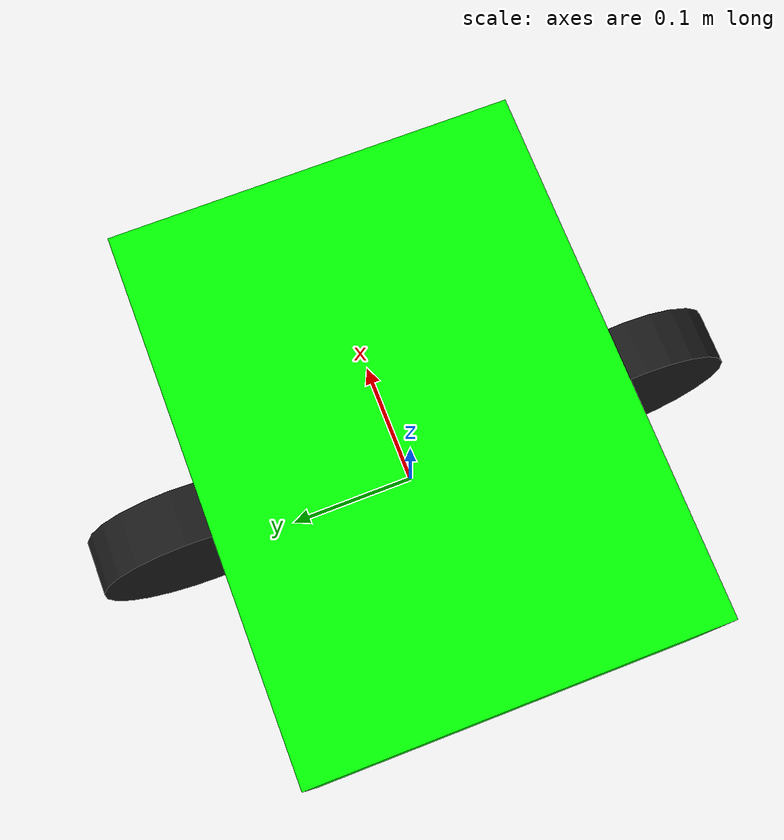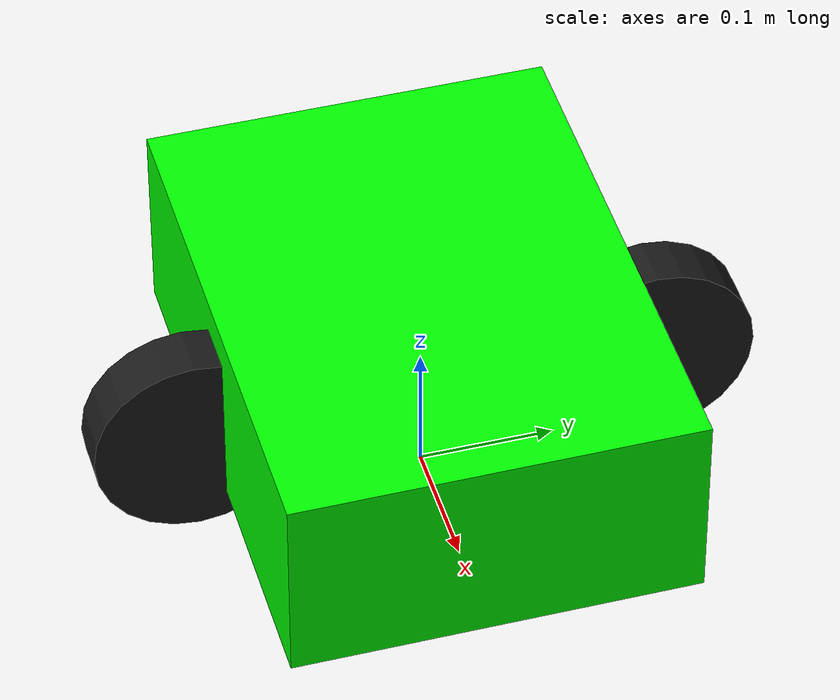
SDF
<?xml version="1.0" ?>
<sdf version="1.7">
  <model name="goal_marker">
    <pose>0 0 0 0 0 0</pose>
    <static>false</static>

    <!-- ================= BASE ================= -->
    <link name="base_link">
      <pose>0 0 0.10 0 0 0</pose>
      <inertial><mass>1.2</mass></inertial>
      <collision name="base_collision">
        <geometry><box><size>0.40 0.30 0.15</size></box></geometry>
      </collision>
      <visual name="base_visual">
        <geometry><box><size>0.40 0.30 0.15</size></box></geometry>
        <material><ambient>0 1 0 1</ambient><diffuse>0 1 0 1</diffuse></material>
      </visual>
    </link>

    <!-- ================= LEFT WHEEL ================= -->
    <link name="left_wheel">
      <pose>0 0.17 0.075 0 0 0</pose>
      <collision name="left_wheel_collision">
        <pose>0 0 0 0 1.5708 0</pose>
        <geometry><cylinder><radius>0.075</radius><length>0.04</length></cylinder></geometry>
      </collision>
      <visual name="left_wheel_visual">
        <pose>0 0 0 0 1.5708 0</pose>
        <geometry><cylinder><radius>0.075</radius><length>0.04</length></cylinder></geometry>
        <material><ambient>0.1 0.1 0.1 1</ambient></material>
      </visual>
    </link>

    <joint name="left_wheel_joint" type="continuous">
      <parent>base_link</parent>
      <child>left_wheel</child>
      <pose>0 0.17 0.075 0 0 0</pose>
      <axis><xyz>0 1 0</xyz></axis>
    </joint>

    <!-- ================= RIGHT WHEEL ================= -->
    <link name="right_wheel">
      <pose>0 -0.17 0.075 0 0 0</pose>
      <collision name="right_wheel_collision">
        <pose>0 0 0 0 1.5708 0</pose>
        <geometry><cylinder><radius>0.075</radius><length>0.04</length></cylinder></geometry>
      </collision>
      <visual name="right_wheel_visual">
        <pose>0 0 0 0 1.5708 0</pose>
        <geometry><cylinder><radius>0.075</radius><length>0.04</length></cylinder></geometry>
        <material><ambient>0.1 0.1 0.1 1</ambient></material>
      </visual>
    </link>

    <joint name="right_wheel_joint" type="continuous">
      <parent>base_link</parent>
      <child>right_wheel</child>
      <pose>0 -0.17 0.075 0 0 0</pose>
      <axis><xyz>0 1 0</xyz></axis>
    </joint>

    <!-- ================= DIFF-DRIVE PLUGIN ================= -->
    <plugin name="goal_diff_drive" filename="libgazebo_ros_diff_drive.so">
      <ros>
        <namespace>/goal_marker</namespace>
        <remapping>cmd_vel:=/goal_marker/cmd_vel</remapping>
        <remapping>odom:=/goal_marker/odom</remapping>
      </ros>
      <left_joint>left_wheel_joint</left_joint>
      <right_joint>right_wheel_joint</right_joint>
      <wheel_separation>0.34</wheel_separation>
      <wheel_diameter>0.15</wheel_diameter>
      <publish_odom>true</publish_odom>
      <publish_wheel_tf>false</publish_wheel_tf>
      <odometry_frame>goal_odom</odometry_frame>
      <robot_base_frame>base_link</robot_base_frame>
    </plugin>
  </model>
</sdf>
